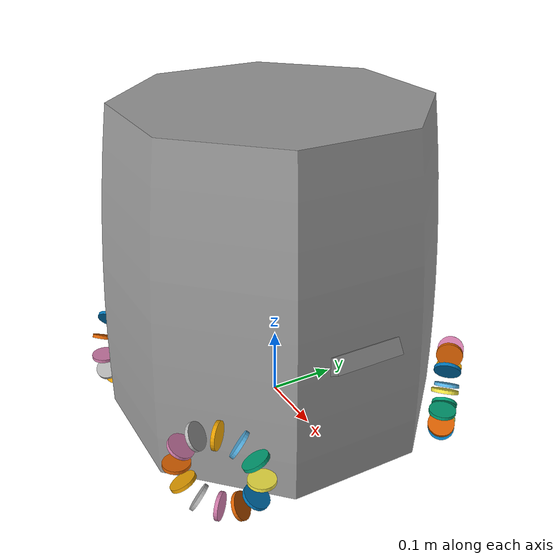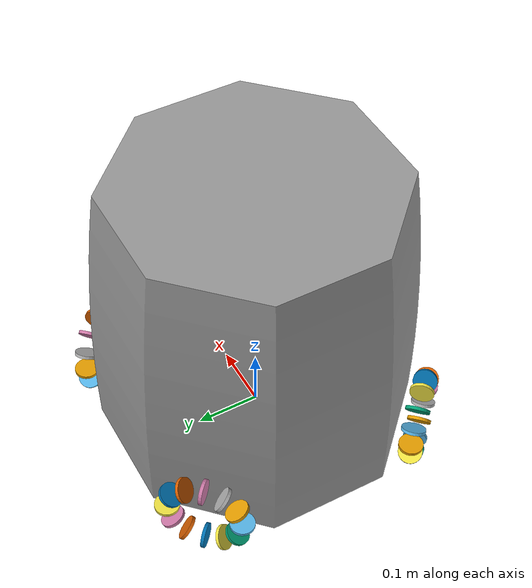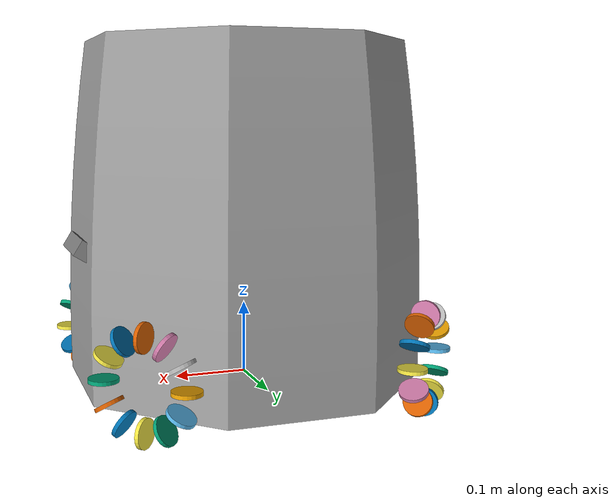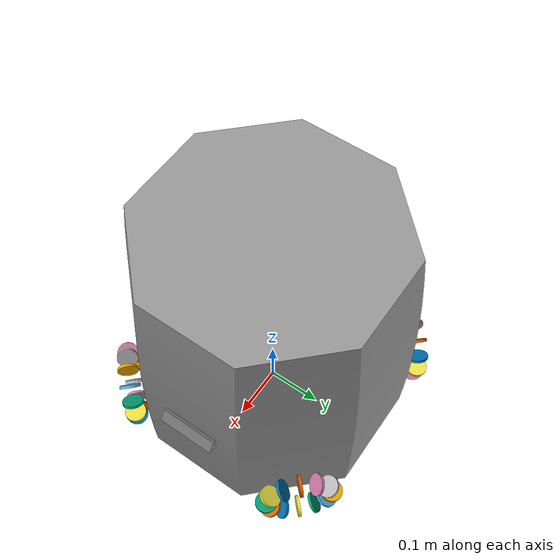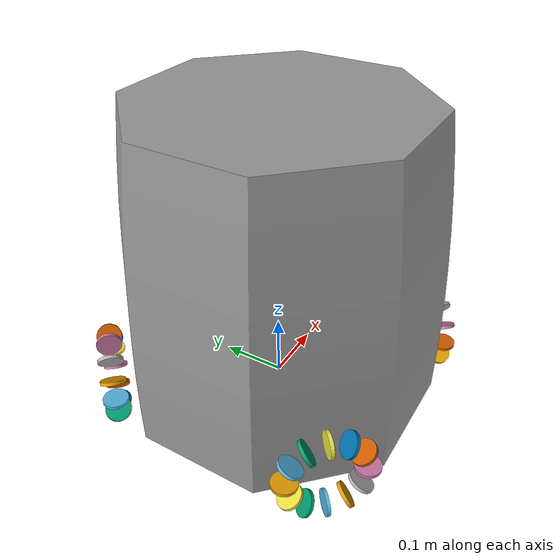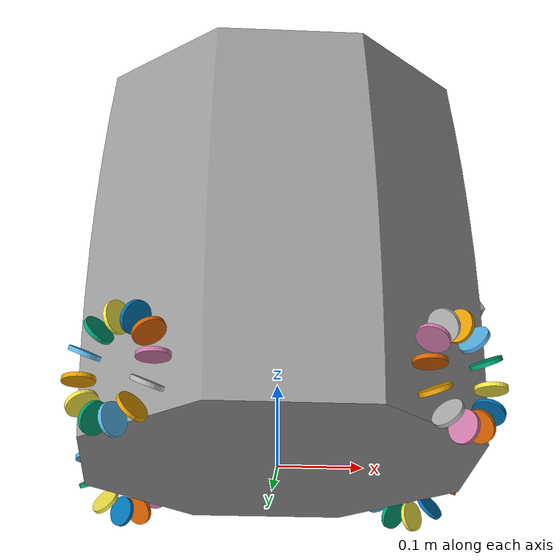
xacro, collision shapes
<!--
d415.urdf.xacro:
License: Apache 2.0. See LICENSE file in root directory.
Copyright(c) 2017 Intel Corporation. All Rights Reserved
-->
<?xml version="1.0"?>
<robot xmlns:xacro="http://ros.org/wiki/xacro" name="walkie_bot">
  <xacro:property name="M_PI" value="3.14159274"/>
  <xacro:arg name="ros2_control" default="gazebo"/>
  <xacro:include filename="$(find walkie_description)/urdf/walkie/base/base.urdf.xacro"/>
  <xacro:include filename="$(find walkie_description)/urdf/walkie/omni_wheel/gz_omni_wheel.urdf.xacro"/>
  <xacro:include filename="$(find walkie_description)/urdf/walkie/lidar/lidar_gz.urdf.xacro"/>
  <xacro:include filename="$(find walkie_description)/urdf/walkie/imu/imu_gz.urdf.xacro"/>
  <xacro:include filename="$(find walkie_description)/urdf/walkie/depth_camera/d415.urdf.xacro"/>
  <!-- =============== Link & Joint =============== -->
  <!-- Base -->
  <link name="base_footprint"/>
  <xacro:base_v0 parent="base_footprint">
    <origin xyz="0 0 0" rpy="0 0 ${M_PI / 2}"/>
  </xacro:base_v0>
  <xacro:base_gazebo_v0/>
  <!-- Wheel -->
  <!-- 1st wheel -->
  <xacro:wheel_v0 prefix="bl" parent="base_link">
    <origin xyz="0.177622395 0.177622395 0.05" rpy="0 0 -${M_PI/4}"/>
    <axis xyz="0.0 1.0 0.0"/>
  </xacro:wheel_v0>
  <!-- 2nd wheel -->
  <xacro:wheel_v0 prefix="br" parent="base_link">
    <origin xyz="-0.177622395 0.177622395 0.05" rpy="0 0 ${M_PI/4}"/>
    <axis xyz="0.0 1.0 0.0"/>
  </xacro:wheel_v0>
  <!-- 3rd wheel -->
  <xacro:wheel_v0 prefix="fr" parent="base_link">
    <origin xyz="-0.177622395 -0.177622395 0.05" rpy="0 0 ${3*M_PI/4}"/>
    <axis xyz="0.0 1.0 0.0"/>
  </xacro:wheel_v0>
  <!-- 4th wheel -->
  <xacro:wheel_v0 prefix="fl" parent="base_link">
    <origin xyz="0.177622395 -0.177622395 0.05" rpy="0 0 ${5*M_PI/4}"/>
    <axis xyz="0.0 1.0 0.0"/>
  </xacro:wheel_v0>
  <!-- lidar sensor -->
  <xacro:lidar_v0 prefix="top" parent="base_link">
    <origin xyz="0 -0.19 0.315"/>
  </xacro:lidar_v0>
  <xacro:lidar_gazebo_v0 prefix="top" min_rad="-3.14" max_rad="3.14" min_range="0.02" max_range="10"/>
  <!-- depth cam sensor -->
  <xacro:sensor_d415 name="bottom" parent="base_link" flag_color="1" flag_ir="0" flag_depth="1" updaterate="2">
    <origin xyz="0 -0.23813 0.18161" rpy="0 -0.5564807787058716 -${M_PI/2}"/>
  </xacro:sensor_d415>
  <!-- imu sensor -->
  <xacro:imu_v0 prefix="top" parent="base_link">
    <origin xyz="0 0 0.17"/>
  </xacro:imu_v0>
  <xacro:imu_gazebo_v0 prefix="top"/>
  <xacro:include filename="$(find walkie_description)/urdf/walkie/ros2_control.xacro"/>
  <xacro:ros2_control ros2_control="$(arg ros2_control)"/>
</robot>

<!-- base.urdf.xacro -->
<robot xmlns:xacro="http://ros.org/wiki/xacro">
  <xacro:include filename="$(find walkie_description)/urdf/walkie/base/base.gazebo.xacro"/>
  <xacro:include filename="$(find walkie_description)/urdf/inertial_macros.xacro"/>
  <xacro:include filename="$(find walkie_description)/urdf/color.xacro"/>
  <xacro:property name="bass_thickness" value="0.008"/>
  <xacro:property name="base_radian" value="0.040"/>
  <xacro:property name="base_mass" value="20.2"/>
  <xacro:macro name="base_v0" params="parent *joint_origin">
    <joint name="base_link_joint" type="fixed">
      <xacro:insert_block name="joint_origin"/>
      <parent link="${parent}"/>
      <child link="base_link"/>
    </joint>
    <link name="base_link">
      <visual>
        <geometry>
          <mesh filename="package://walkie_description/meshes/walkie/base_link.stl" scale="0.001 0.001 0.001"/>
        </geometry>
        <material name="grey"/>
      </visual>
      <collision>
        <geometry>
          <mesh filename="package://walkie_description/meshes/walkie/base_link_collision.stl"/>
        </geometry>
      </collision>
      <xacro:inertial_cylinder mass="${base_mass}" length="${bass_thickness}" radius="${base_radian}">
        <origin xyz="0 0 0" rpy="0 0 0"/>
      </xacro:inertial_cylinder>
    </link>
  </xacro:macro>
</robot>

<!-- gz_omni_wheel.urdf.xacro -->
<robot xmlns:xacro="http://ros.org/wiki/xacro">
  <xacro:include filename="$(find walkie_description)/urdf/inertial_macros.xacro"/>
  <xacro:include filename="$(find walkie_description)/urdf/walkie/omni_wheel/omni_wheel.gazebo.xacro"/>
  <xacro:include filename="$(find walkie_description)/urdf/walkie/omni_wheel/omni_wheel.transmission.xacro"/>
  <xacro:include filename="$(find walkie_description)/urdf/walkie/roller/gz_roller.urdf.xacro"/>
  <xacro:property name="wheel_thickness" value="0.0185"/>
  <xacro:property name="wheel_radian" value="0.0175"/>
  <xacro:property name="wheel_mass" value="0.05"/>
  <xacro:macro name="wheel_v0" params="prefix parent *joint_origin *joint_axis">
    <joint name="${prefix}_wheel_joint" type="continuous">
      <xacro:insert_block name="joint_origin"/>
      <parent link="${parent}"/>
      <child link="${prefix}_wheel_link"/>
      <limit effort="100" velocity="100"/>
      <dynamics damping="5.0" friction="0.5"/>
      <xacro:insert_block name="joint_axis"/>
    </joint>
    <link name="${prefix}_wheel_link">
      <visual>
        <geometry>
          <mesh filename="package://walkie_description/meshes/walkie/omni_wheel.dae" scale="1 1 1"/>
        </geometry>
      </visual>
      <xacro:inertial_cylinder mass="${wheel_mass}" length="${wheel_thickness}" radius="${wheel_radian}">
        <origin xyz="0 ${wheel_thickness/2} 0" rpy="1.570796327 0 0"/>
      </xacro:inertial_cylinder>
    </link>
    <xacro:roller prefix="${prefix}" num="1">
      <origin xyz="0.0577 0.012 0.0" rpy="0.0 -0.0 0.0"/>
      <axis xyz="0.0 0.0 1.0"/>
    </xacro:roller>
    <xacro:roller prefix="${prefix}" num="2">
      <origin xyz="0.05 0.012 0.0289" rpy="0.0 -0.5236 0.0"/>
      <axis xyz="0.0 0.0 1.0"/>
    </xacro:roller>
    <xacro:roller prefix="${prefix}" num="3">
      <origin xyz="0.0289 0.012 0.05" rpy="0.0 -1.0472 0.0"/>
      <axis xyz="0.0 0.0 1.0"/>
    </xacro:roller>
    <xacro:roller prefix="${prefix}" num="4">
      <origin xyz="0.0 0.012 0.0577" rpy="0.0 -1.5708 0.0"/>
      <axis xyz="0.0 0.0 1.0"/>
    </xacro:roller>
    <xacro:roller prefix="${prefix}" num="5">
      <origin xyz="-0.0289 0.012 0.05" rpy="0.0 -2.0944 0.0"/>
      <axis xyz="0.0 0.0 1.0"/>
    </xacro:roller>
    <xacro:roller prefix="${prefix}" num="6">
      <origin xyz="-0.05 0.012 0.0289" rpy="0.0 -2.618 0.0"/>
      <axis xyz="0.0 0.0 1.0"/>
    </xacro:roller>
    <xacro:roller prefix="${prefix}" num="7">
      <origin xyz="-0.0577 0.012 0.0" rpy="0.0 -3.1416 0.0"/>
      <axis xyz="0.0 0.0 1.0"/>
    </xacro:roller>
    <xacro:roller prefix="${prefix}" num="8">
      <origin xyz="-0.05 0.012 -0.0289" rpy="0.0 -3.6652 0.0"/>
      <axis xyz="0.0 0.0 1.0"/>
    </xacro:roller>
    <xacro:roller prefix="${prefix}" num="9">
      <origin xyz="-0.0289 0.012 -0.05" rpy="0.0 -4.1888 0.0"/>
      <axis xyz="0.0 0.0 1.0"/>
    </xacro:roller>
    <xacro:roller prefix="${prefix}" num="10">
      <origin xyz="-0.0 0.012 -0.0577" rpy="0.0 -4.7124 0.0"/>
      <axis xyz="0.0 0.0 1.0"/>
    </xacro:roller>
    <xacro:roller prefix="${prefix}" num="11">
      <origin xyz="0.0289 0.012 -0.05" rpy="0.0 -5.236 0.0"/>
      <axis xyz="0.0 0.0 1.0"/>
    </xacro:roller>
    <xacro:roller prefix="${prefix}" num="12">
      <origin xyz="0.05 0.012 -0.0289" rpy="0.0 -5.7596 0.0"/>
      <axis xyz="0.0 0.0 1.0"/>
    </xacro:roller>
  </xacro:macro>
</robot>

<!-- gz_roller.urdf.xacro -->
<robot xmlns:xacro="http://ros.org/wiki/xacro">
  <xacro:include filename="$(find walkie_description)/urdf/inertial_macros.xacro"/>
  <xacro:include filename="$(find walkie_description)/urdf/walkie/roller/roller.gazebo.xacro"/>
  <xacro:property name="roller_mass" value="0.0001"/>
  <xacro:property name="roller_radius" value="0.019"/>
  <xacro:macro name="roller" params="prefix num *joint_origin *joint_axis">
    <link name="roller_${prefix}_${num}_link">
      <xacro:inertial_sphere mass="${roller_mass}" radius="${roller_radius}">
        <origin xyz="0 0 0" rpy="0 0 0"/>
      </xacro:inertial_sphere>
      <collision>
        <origin xyz="0 0 0" rpy="0 0 0"/>
        <geometry>
          <cylinder length="0.005" radius="${roller_radius}"/>
        </geometry>
      </collision>
    </link>
    <joint name="roller_${prefix}_${num}_joint" type="continuous">
      <xacro:insert_block name="joint_origin"/>
      <parent link="${prefix}_wheel_link"/>
      <child link="roller_${prefix}_${num}_link"/>
      <xacro:insert_block name="joint_axis"/>
    </joint>
    <xacro:roller_gazebo_v0 prefix="${prefix}"/>
  </xacro:macro>
</robot>

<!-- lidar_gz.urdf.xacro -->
<robot xmlns:xacro="http://ros.org/wiki/xacro">
  <xacro:include filename="$(find walkie_description)/urdf/walkie/lidar/lidar.gz.xacro" />

  <xacro:macro name="lidar_v0" params="prefix parent *joint_origin">
    <joint name="${prefix}_lidar_joint" type="fixed">
      <xacro:insert_block name="joint_origin" />
      <parent link="${parent}" />
      <child link="${prefix}_lidar_link" />
    </joint>
    <link name="${prefix}_lidar_link">
    </link>
  </xacro:macro>
</robot>

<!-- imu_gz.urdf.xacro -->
<robot xmlns:xacro="http://ros.org/wiki/xacro">
  <xacro:include filename="$(find walkie_description)/urdf/walkie/imu/imu.gz.xacro" />
  <xacro:macro name="imu_v0" params="prefix parent *joint_origin">
    <joint name="${prefix}_imu_joint" type="fixed">
      <xacro:insert_block name="joint_origin" />
      <parent link="${parent}" />
      <child link="${prefix}_imu_link" />
    </joint>
    <link name="${prefix}_imu_link">
    </link>
  </xacro:macro>
</robot>

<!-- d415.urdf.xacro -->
<robot xmlns:xacro="http://ros.org/wiki/xacro" name="sensor_d415">
  <xacro:macro name="sensor_d415" params="name parent flag_color flag_ir flag_depth updaterate *origin">
    <!-- The following values are approximate, and the camera node
	publishing TF values with actual calibrated camera extrinsic values -->
    <xacro:property name="d415_cam_depth_to_left_ir_offset" value="0.0"/>
    <xacro:property name="d415_cam_depth_to_right_ir_offset" value="-0.055"/>
    <xacro:property name="d415_cam_depth_to_color_offset" value="0.015"/>
    <!-- The following values model the aluminum peripherial case for the
	d415 camera, with the camera joint represented by the actual
	peripherial camera tripod mount -->
    <xacro:property name="d415_cam_width" value="0.099"/>
    <xacro:property name="d415_cam_height" value="0.023"/>
    <xacro:property name="d415_cam_depth" value="0.02005"/>
    <xacro:property name="d415_cam_mount_from_center_offset" value="0.00987"/>
    <!-- The following offset is relative the the physical d415 camera peripherial camera tripod mount -->
    <xacro:property name="d415_cam_depth_px" value="${d415_cam_mount_from_center_offset}"/>
    <xacro:property name="d415_cam_depth_py" value="0.020"/>
    <xacro:property name="d415_cam_depth_pz" value="${d415_cam_height/2}"/>
    <material name="aluminum">
      <color rgba="0.5 0.5 0.5 1"/>
    </material>
    <!-- camera body, with origin at bottom screw mount -->
    <joint name="${name}_joint" type="fixed">
      <xacro:insert_block name="origin"/>
      <parent link="${parent}"/>
      <child link="${name}_bottom_screw_frame"/>
    </joint>
    <link name="${name}_bottom_screw_frame"/>
    <joint name="${name}_link_joint" type="fixed">
      <origin xyz="0 ${d415_cam_depth_py} ${d415_cam_depth_pz}" rpy="0 0 0"/>
      <parent link="${name}_bottom_screw_frame"/>
      <child link="${name}_link"/>
    </joint>
    <link name="${name}_link">
      <visual>
        <origin xyz="${d415_cam_mount_from_center_offset} ${-d415_cam_depth_py} 0" rpy="${pi/2} 0 ${pi/2}"/>
        <geometry>
          <mesh filename="package://walkie_description/urdf/walkie/depth_camera/visual/d415.stl"/>
        </geometry>
        <material name="aluminum"/>
      </visual>
      <collision>
        <origin xyz="0 ${-d415_cam_depth_py} 0" rpy="0 0 0"/>
        <geometry>
          <box size="${d415_cam_depth} ${d415_cam_width} ${d415_cam_height}"/>
        </geometry>
      </collision>
      <inertial>
        <!-- The following are not reliable values, and should not be used for modeling -->
        <mass value="0.564"/>
        <origin xyz="0 0 0"/>
        <inertia ixx="0.003881243" ixy="0.0" ixz="0.0" iyy="0.000498940" iyz="0.0" izz="0.003879257"/>
      </inertial>
    </link>
    <!-- camera depth joints and links -->
    <joint name="${name}_depth_joint" type="fixed">
      <origin xyz="0 0 0" rpy="0 0 0"/>
      <parent link="${name}_link"/>
      <child link="${name}_depth_frame"/>
    </joint>
    <link name="${name}_depth_frame"/>
    <joint name="${name}_depth_optical_joint" type="fixed">
      <origin xyz="0 0 0" rpy="${-pi/2} 0 ${-pi/2}"/>
      <parent link="${name}_depth_frame"/>
      <child link="${name}_depth_optical_frame"/>
    </joint>
    <link name="${name}_depth_optical_frame"/>
    <!-- camera left IR joints and links -->
    <joint name="${name}_left_ir_joint" type="fixed">
      <origin xyz="0 ${d415_cam_depth_to_left_ir_offset} 0" rpy="0 0 0"/>
      <parent link="${name}_depth_frame"/>
      <child link="${name}_left_ir_frame"/>
    </joint>
    <link name="${name}_left_ir_frame"/>
    <joint name="${name}_left_ir_optical_joint" type="fixed">
      <origin xyz="0 0 0" rpy="${-pi/2} 0 ${-pi/2}"/>
      <parent link="${name}_left_ir_frame"/>
      <child link="${name}_left_ir_optical_frame"/>
    </joint>
    <link name="${name}_left_ir_optical_frame"/>
    <!-- camera right IR joints and links -->
    <joint name="${name}_right_ir_joint" type="fixed">
      <origin xyz="0 ${d415_cam_depth_to_right_ir_offset} 0" rpy="0 0 0"/>
      <parent link="${name}_depth_frame"/>
      <child link="${name}_right_ir_frame"/>
    </joint>
    <link name="${name}_right_ir_frame"/>
    <joint name="${name}_right_ir_optical_joint" type="fixed">
      <origin xyz="0 0 0" rpy="${-pi/2} 0 ${-pi/2}"/>
      <parent link="${name}_right_ir_frame"/>
      <child link="${name}_right_ir_optical_frame"/>
    </joint>
    <link name="${name}_right_ir_optical_frame"/>
    <!-- camera color joints and links -->
    <joint name="${name}_color_joint" type="fixed">
      <origin xyz="0 ${d415_cam_depth_to_color_offset} 0" rpy="0 0 0"/>
      <parent link="${name}_depth_frame"/>
      <child link="${name}_color_frame"/>
    </joint>
    <link name="${name}_color_frame"/>
    <joint name="${name}_color_optical_joint" type="fixed">
      <origin xyz="0 0 0" rpy="${-pi/2} 0 ${-pi/2}"/>
      <parent link="${name}_color_frame"/>
      <child link="${name}_color_optical_frame"/>
    </joint>
    <link name="${name}_color_optical_frame"/>
    <gazebo reference="${name}_link">
      <xacro:if value="${flag_color}">
        <sensor name="${name}_rgb_sensor" type="camera">
          <pose frame="${name}_color_optical_frame">0 0 0 0 0 0</pose>
          <camera name="${name}_color">
            <horizontal_fov>1.211258501</horizontal_fov>
            <!--69.4 deg = 1.211258501 rad -->
            <aspect_ratio>1.777777778</aspect_ratio>
            <image>
              <width>1920</width>
              <height>1080</height>
              <format>RGB_INT8</format>
            </image>
            <clip>
              <near>0.1</near>
              <far>100</far>
            </clip>
            <noise>
              <type>gaussian</type>
              <mean>0.0</mean>
              <stddev>0.007</stddev>
            </noise>
          </camera>
          <always_on>1</always_on>
          <update_rate>${updaterate}</update_rate>
          <visualize>1</visualize>
          <gz_frame_id>${name}_color_optical_frame</gz_frame_id>
          <plugin name="${name}_color_controller" filename="libgazebo_ros_camera.so">
            <alwaysOn>true</alwaysOn>
            <updateRate>0.0</updateRate>
            <cameraName>${name}/color/</cameraName>
            <imageTopicName>image_raw</imageTopicName>
            <cameraInfoTopicName>camera_info</cameraInfoTopicName>
            <frameName>${name}_color_optical_frame</frameName>
            <hackBaseline>0.0</hackBaseline>
            <distortionK1>0.0</distortionK1>
            <distortionK2>0.0</distortionK2>
            <distortionK3>0.0</distortionK3>
            <distortionT1>0.0</distortionT1>
            <distortionT2>0.0</distortionT2>
          </plugin>
        </sensor>
      </xacro:if>
      <xacro:if value="${flag_ir}">
        <sensor name="${name}_left_ired_sensor" type="camera">
          <pose frame="${name}_left_ir_optical_frame">0 0 0 0 0 0</pose>
          <camera name="${name}">
            <horizontal_fov>1.211258501</horizontal_fov>
            <!--69.4 deg = 1.211258501 rad -->
            <aspect_ratio>1.777777778</aspect_ratio>
            <image>
              <width>1920</width>
              <height>1080</height>
              <format>L_INT8</format>
            </image>
            <clip>
              <near>0.1</near>
              <far>100</far>
            </clip>
            <noise>
              <type>gaussian</type>
              <mean>0.0</mean>
              <stddev>0.05</stddev>
            </noise>
          </camera>
          <always_on>1</always_on>
          <update_rate>${updaterate}</update_rate>
          <visualize>0</visualize>
          <plugin name="{name}_left_ir_controller" filename="libgazebo_ros_camera.so">
            <alwaysOn>true</alwaysOn>
            <updateRate>0.0</updateRate>
            <cameraName>${name}/left_ir/</cameraName>
            <imageTopicName>image_raw</imageTopicName>
            <cameraInfoTopicName>camera_info</cameraInfoTopicName>
            <frameName>${name}_left_ir_optical_frame</frameName>
            <hackBaseline>0.0</hackBaseline>
            <distortionK1>0.0</distortionK1>
            <distortionK2>0.0</distortionK2>
            <distortionK3>0.0</distortionK3>
            <distortionT1>0.0</distortionT1>
            <distortionT2>0.0</distortionT2>
          </plugin>
        </sensor>
        <sensor name="${name}_right_ired_sensor" type="camera">
          <pose frame="${name}_right_ir_optical_frame">0 0 0 0 0 0</pose>
          <camera name="${name}">
            <horizontal_fov>1.211258501</horizontal_fov>
            <!--69.4 deg = 1.211258501 rad -->
            <aspect_ratio>1.777777778</aspect_ratio>
            <image>
              <width>1920</width>
              <height>1080</height>
              <format>L_INT8</format>
            </image>
            <clip>
              <near>0.1</near>
              <far>100</far>
            </clip>
            <noise>
              <type>gaussian</type>
              <mean>0.0</mean>
              <stddev>0.05</stddev>
            </noise>
          </camera>
          <always_on>1</always_on>
          <update_rate>${updaterate}</update_rate>
          <visualize>0</visualize>
          <plugin name="{name}_right_ir_controller" filename="libgazebo_ros_camera.so">
            <alwaysOn>true</alwaysOn>
            <updateRate>0.0</updateRate>
            <cameraName>${name}/right_ir/</cameraName>
            <imageTopicName>image_raw</imageTopicName>
            <cameraInfoTopicName>camera_info</cameraInfoTopicName>
            <frameName>${name}_right_ir_optical_frame</frameName>
            <hackBaseline>0.0</hackBaseline>
            <distortionK1>0.0</distortionK1>
            <distortionK2>0.0</distortionK2>
            <distortionK3>0.0</distortionK3>
            <distortionT1>0.0</distortionT1>
            <distortionT2>0.0</distortionT2>
          </plugin>
        </sensor>
      </xacro:if>
      <xacro:if value="${flag_depth}">
        <sensor name="${name}_depth_sensor" type="depth">
          <pose frame="${name}_depth_optical_frame">0 -0.03 0.004 0 0 0</pose>
          <camera name="${name}">
            <camera_info_topic>${name}_depth/camera_info</camera_info_topic>
            <!--69.4 deg = 1.211258501 rad -->
            <horizontal_fov>1.211258501</horizontal_fov>
            <aspect_ratio>1.777777778</aspect_ratio>
            <image>
              <width>1280</width>
              <height>720</height>
            </image>
            <clip>
              <near>0.1</near>
              <far>8</far>
            </clip>
            <noise>
              <type>gaussian</type>
              <mean>0.0</mean>
              <stddev>0.010</stddev>
            </noise>
          </camera>
          <always_on>1</always_on>
          <update_rate>${updaterate}</update_rate>
          <visualize>true</visualize>
          <topic>${name}_depth/image</topic>
          <gz_frame_id>${name}_depth_frame</gz_frame_id>
          <plugin name="{name}_depth_controller" filename="libgazebo_ros_camera.so">
            <alwaysOn>true</alwaysOn>
            <updateRate>0.0</updateRate>
            <cameraName>${name}/depth/</cameraName>
            <imageTopicName>image_raw</imageTopicName>
            <cameraInfoTopicName>camera_info</cameraInfoTopicName>
            <frameName>${name}_depth_optical_frame</frameName>
            <hackBaseline>0.07</hackBaseline>
            <distortionK1>0.0</distortionK1>
            <distortionK2>0.0</distortionK2>
            <distortionK3>0.0</distortionK3>
            <distortionT1>0.0</distortionT1>
            <distortionT2>0.0</distortionT2>
            <min_depth>0.1</min_depth>
            <max_depth>100.0</max_depth>
          </plugin>
        </sensor>
      </xacro:if>
    </gazebo>
  </xacro:macro>
</robot>
